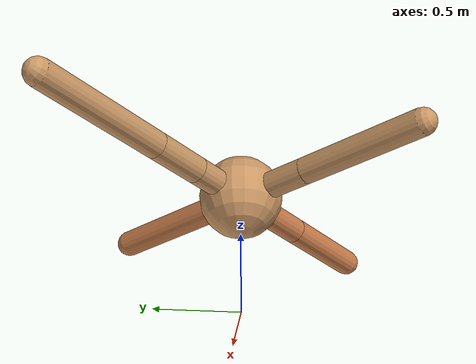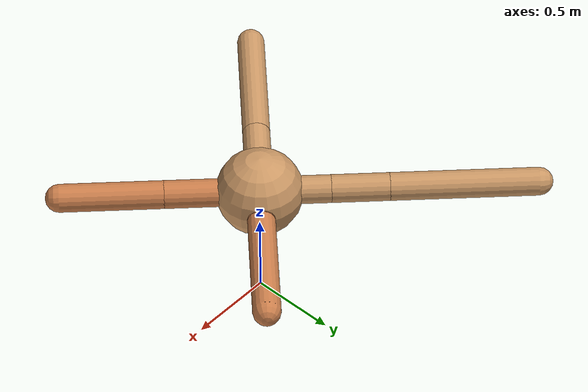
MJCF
<mujoco model="ant">
  <compiler angle="degree" coordinate="local" inertiafromgeom="true" />
  <option integrator="RK4" timestep="0.01" />
  <custom>
    <numeric data="0.0 0.0 0.55 1.0 0.0 0.0 0.0 0.0 1.0 0.0 -1.0 0.0 -1.0 0.0 1.0" name="init_qpos" />
  </custom>
  <default>
    <joint armature="1" damping="1" limited="true" />
    <geom conaffinity="0" condim="3" density="5.0" friction="1.5 0.1 0.1" margin="0.01" rgba="0.8 0.6 0.4 1" />
  </default>
  <worldbody>
    <body name="torso" pos="0 0 0.75">
      <geom name="torso_geom" pos="0 0 0" size="0.25" type="sphere" />

      <body name="front_left_leg" pos="0 0 0">
        <geom fromto="0.0 0.0 0.0 0.0479 0.0479 0.0" name="aux_1_geom" rgba=".8 .5 .3 1" size="0.08" type="capsule" />
        <body name="aux_1" pos="0.0479 0.0479 0.0">
          <joint axis="0 0 1" name="hip_1" pos="0.0 0.0 0.0" range="-40 40" type="hinge" />
          <geom fromto="0.0 0.0 0.0 0.121 0.121 0.0" name="left_leg_geom" rgba=".8 .5 .3 1" size="0.08" type="capsule" />
          <body name="front_left_foot" pos="0.121 0.121 0.0">
            <joint axis="-1 1 0" name="ankle_1" pos="0.0 0.0 0.0" range="30 100" type="hinge" />
            <geom fromto="0.0 0.0 0.0 0.489 0.489 0.0" name="left_ankle_geom" rgba=".8 .5 .3 1" size="0.08" type="capsule" />
          </body>
        </body>
      </body>
      <body name="front_right_leg" pos="0 0 0">
        <geom fromto="0.0 0.0 0.0 -0.285 0.285 0.0" name="aux_2_geom" size="0.08" type="capsule" />
        <body name="aux_2" pos="-0.285 0.285 0.0">
          <joint axis="0 0 1" name="hip_2" pos="0.0 0.0 0.0" range="-40 40" type="hinge" />
          <geom fromto="0.0 0.0 0.0 -0.234 0.234 0.0" name="right_leg_geom" size="0.08" type="capsule" />
          <body name="front_right_foot" pos="-0.234 0.234 0.0">
            <joint axis="1 1 0" name="ankle_2" pos="0.0 0.0 0.0" range="-100 -30" type="hinge" />
            <geom fromto="0.0 0.0 0.0 -0.598 0.598 0.0" name="right_ankle_geom" size="0.08" type="capsule" />
          </body>
        </body>
      </body>
      <body name="left_back_leg" pos="0 0 0">
        <geom fromto="0.0 0.0 0.0 -0.092 -0.092 0.0" name="aux_3_geom" size="0.08" type="capsule" />
        <body name="aux_3" pos="-0.092 -0.092 0.0">
          <joint axis="0 0 1" name="hip_3" pos="0.0 0.0 0.0" range="-40 40" type="hinge" />
          <geom fromto="0.0 0.0 0.0 -0.243 -0.243 0.0" name="back_leg_geom" size="0.08" type="capsule" />
          <body name="left_back_foot" pos="-0.243 -0.243 0.0">
            <joint axis="-1 1 0" name="ankle_3" pos="0.0 0.0 0.0" range="-100 -30" type="hinge" />
            <geom fromto="0.0 0.0 0.0 -0.543 -0.543 0.0" name="third_ankle_geom" size="0.08" type="capsule" />
          </body>
        </body>
      </body>
      <body name="right_back_leg" pos="0 0 0">
        <geom fromto="0.0 0.0 0.0 0.0422 -0.0422 0.0" name="aux_4_geom" rgba=".8 .5 .3 1" size="0.08" type="capsule" />
        <body name="aux_4" pos="0.0422 -0.0422 0.0">
          <joint axis="0 0 1" name="hip_4" pos="0.0 0.0 0.0" range="-40 40" type="hinge" />
          <geom fromto="0.0 0.0 0.0 0.338 -0.338 0.0" name="rightback_leg_geom" rgba=".8 .5 .3 1" size="0.08" type="capsule" />
          <body name="right_back_foot" pos="0.338 -0.338 0.0">
            <joint axis="1 1 0" name="ankle_4" pos="0.0 0.0 0.0" range="30 100" type="hinge" />
            <geom fromto="0.0 0.0 0.0 0.417 -0.417 0.0" name="fourth_ankle_geom" rgba=".8 .5 .3 1" size="0.08" type="capsule" />
          </body>
        </body>
      </body>
    </body>
  </worldbody>
  <actuator>
    <motor ctrllimited="true" ctrlrange="-1.0 1.0" gear="150" joint="hip_4" />
    <motor ctrllimited="true" ctrlrange="-1.0 1.0" gear="150" joint="ankle_4" />
    <motor ctrllimited="true" ctrlrange="-1.0 1.0" gear="150" joint="hip_1" />
    <motor ctrllimited="true" ctrlrange="-1.0 1.0" gear="150" joint="ankle_1" />
    <motor ctrllimited="true" ctrlrange="-1.0 1.0" gear="150" joint="hip_2" />
    <motor ctrllimited="true" ctrlrange="-1.0 1.0" gear="150" joint="ankle_2" />
    <motor ctrllimited="true" ctrlrange="-1.0 1.0" gear="150" joint="hip_3" />
    <motor ctrllimited="true" ctrlrange="-1.0 1.0" gear="150" joint="ankle_3" />
  </actuator>
</mujoco>
